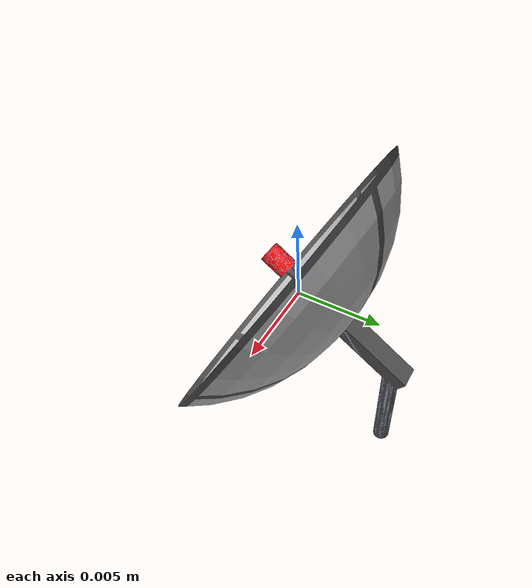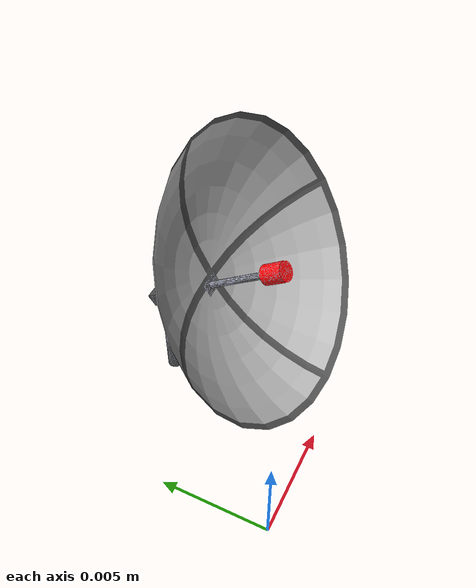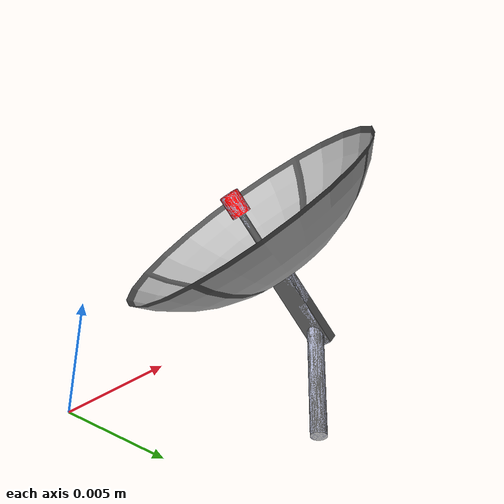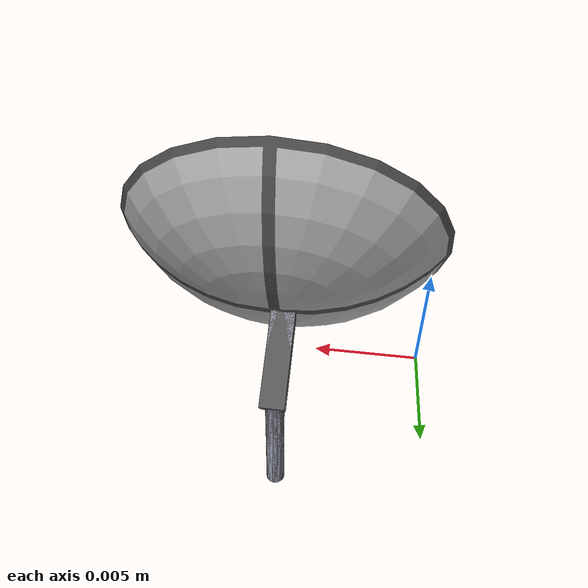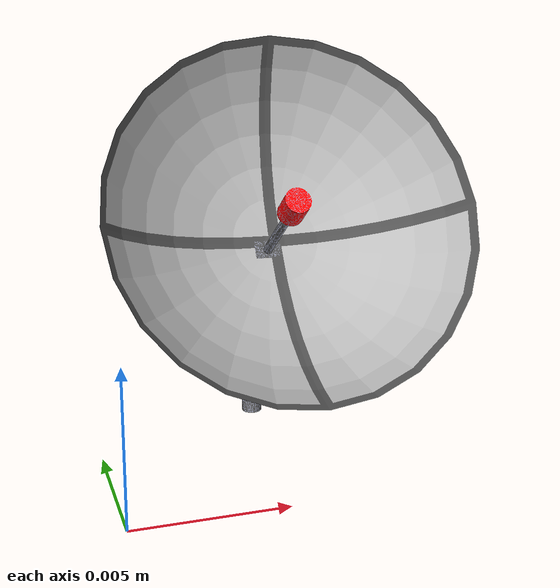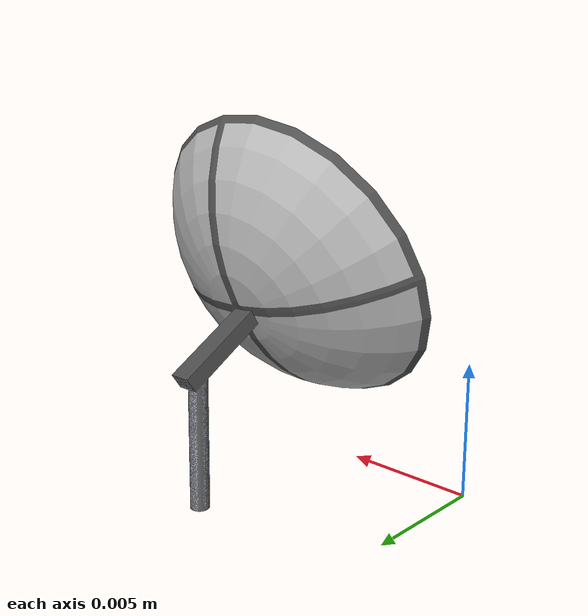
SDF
<?xml version='1.0'?>
<sdf version='1.4'>
    <model name="beacon_v1">
        <link name="beacon">
            <collision name="collision">
                <pose>0 0 0 0 0 0</pose>
                <geometry>
                    <box>
                        <size>0.10 0.10 0.25</size>
                    </box>
                </geometry>
            </collision>
            <visual name="visual">
                <pose>0 0 0 0 0 0</pose>
                <geometry>
                    <mesh>
                        <uri>/home/leon/test_ws/src/beacon_gazebo_sim/models/beacon/model.dae</uri>
                        <!-- SOLU PROVISIONAL -->
                        <scale>0.005 0.005 0.005</scale>
                    </mesh>
                </geometry>
            </visual>
            <gravity>0</gravity>
        </link>
        <plugin name="receiver_model_plugin" filename="libbeacon_model_plugin.so">
            <m_rssi>-60</m_rssi>
            <beacon_link>beacon</beacon_link>
        </plugin>
    </model>
</sdf>
